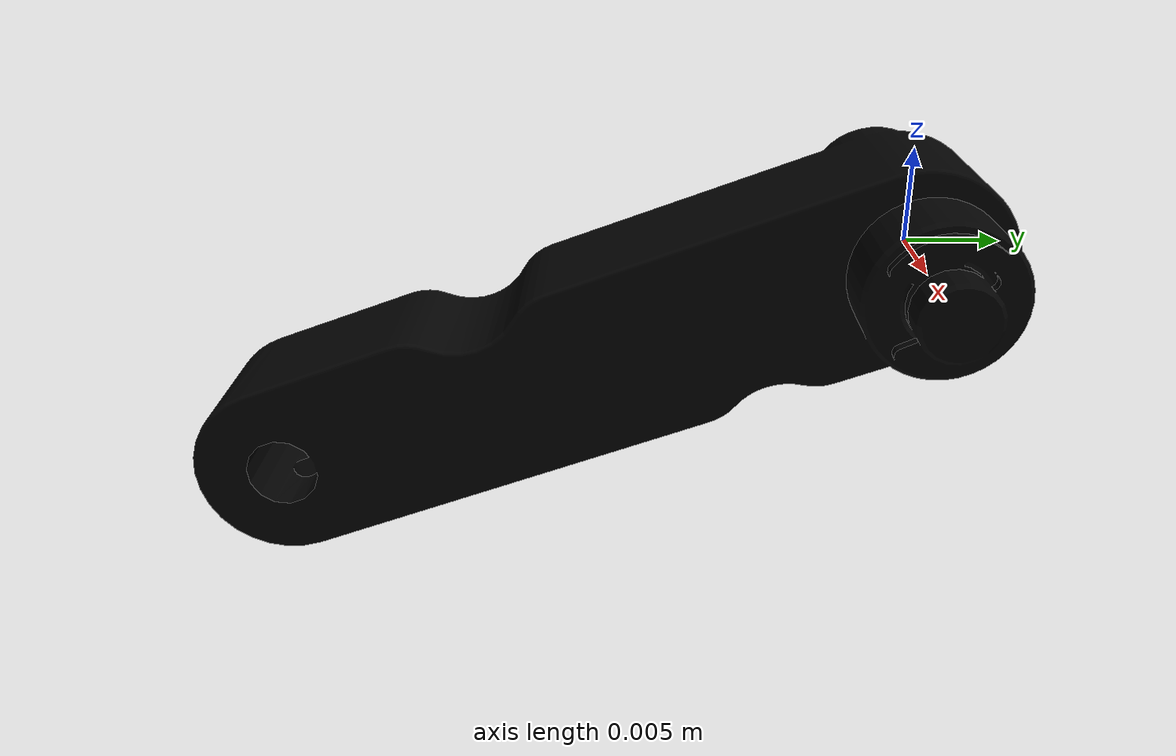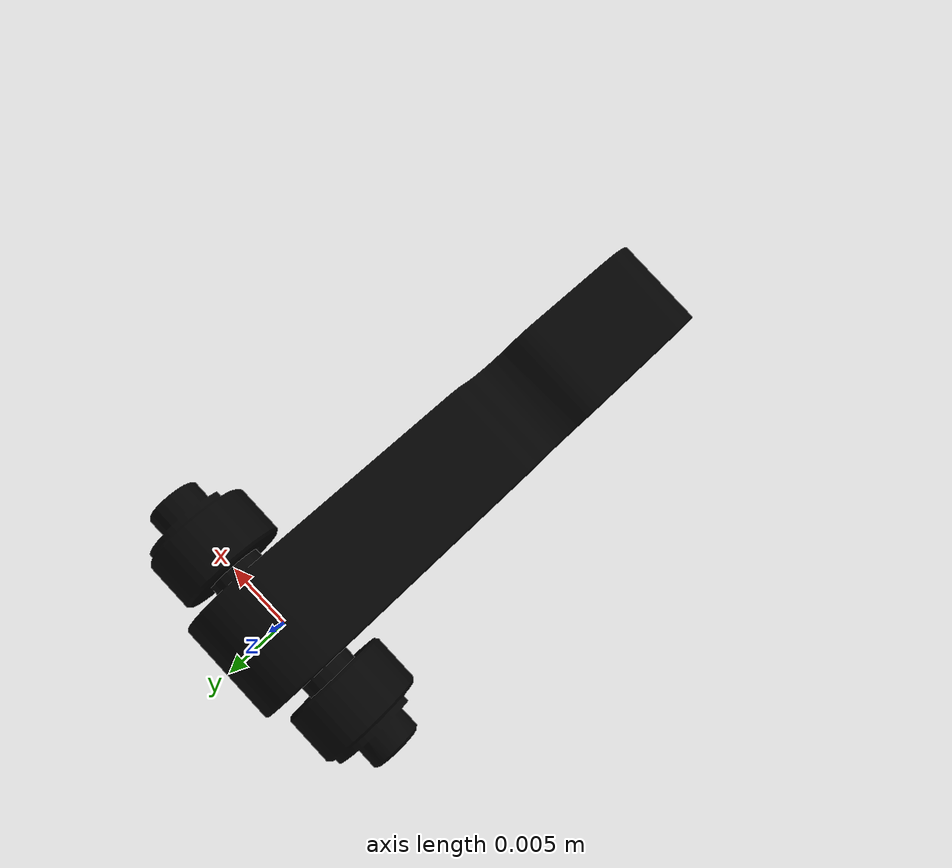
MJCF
<mujoco model="in_link">
  <default>
    <default class="visual">
      <geom group="2" type="mesh" contype="0" conaffinity="0"/>
    </default>
    <default class="collision">
      <geom group="3" type="mesh"/>
    </default>
  </default>
  <asset>
    <material name="black_metal" specular="0.5" shininess="0.49" rgba="0.010000 0.010000 0.010000 1.000000"/>
    <mesh file="in_link.obj"/>
    <mesh file="in_link_collision_0.obj"/>
    <mesh file="in_link_collision_1.obj"/>
    <mesh file="in_link_collision_2.obj"/>
  </asset>
  <worldbody>
    <body name="in_link">
      <geom material="black_metal" mesh="in_link" class="visual"/>
      <geom mesh="in_link_collision_0" rgba="0.2555528292416138 0.2954980105328121 0.10389613311027368 1" class="collision"/>
      <geom mesh="in_link_collision_1" rgba="0.4235311083241854 0.2677572220855968 0.5351186427045953 1" class="collision"/>
      <geom mesh="in_link_collision_2" rgba="0.596444365815045 0.621653240731254 0.20310181949454154 1" class="collision"/>
    </body>
  </worldbody>
</mujoco>
